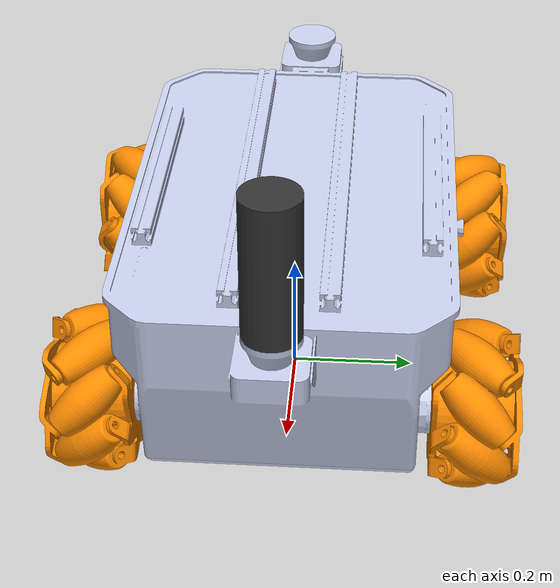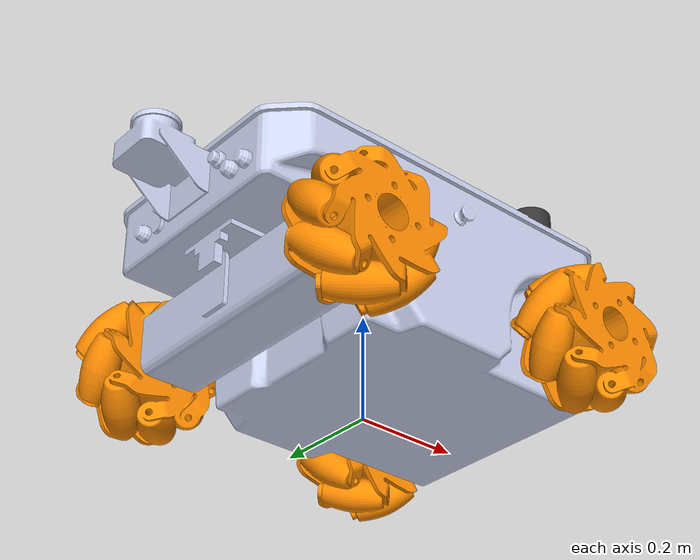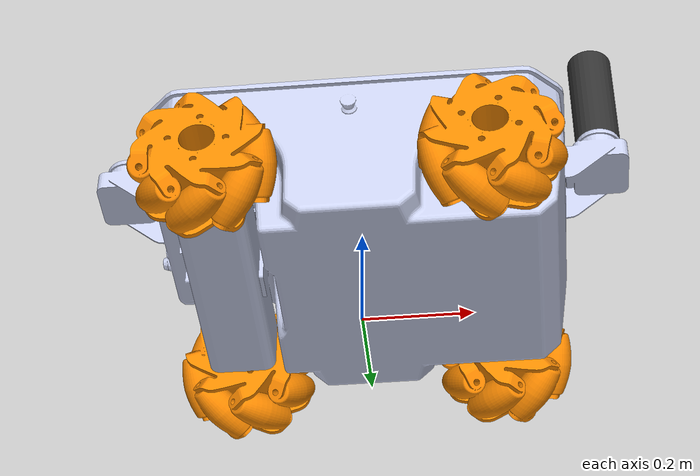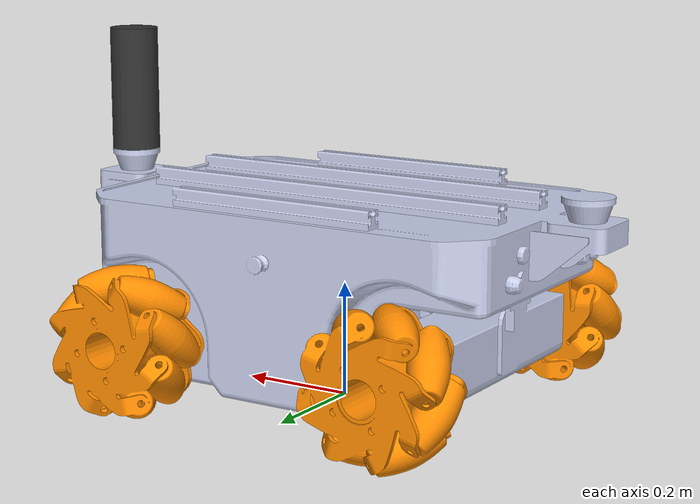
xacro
<?xml version="1.0" encoding="utf-8"?>
<robot name="neobotix_mpo_500" xmlns:xacro="http://www.ros.org/wiki/xacro">

  <link name="base_footprint"/>
  <joint name="base_footprint_joint" type="fixed">
    <parent link="base_footprint"/>
    <child link="base_link"/>
    <!-- Wheel Z offset is -0.0695, radius is ~0.125. 0.125 + 0.0695 = 0.1945 -->
    <origin xyz="0 0 0.1945" rpy="0 0 0"/>
  </joint>

  <link name="base_link">
    <inertial>
      <origin xyz="0.0256676534522073 -1.75256135478974E-05 0.0197583725255792" rpy="0 0 0" />
      <mass value="99.9941250990312" />
      <inertia ixx="2.59830231125293" ixy="-0.000782873053846597" ixz="0.321647608268646" iyy="4.1760312438908" iyz="0.000104490647560942" izz="5.24462822654489" />
    </inertial>
    <visual>
      <origin xyz="0 0 0" rpy="0 0 0" />
      <geometry>
        <mesh filename="package://neobotix_mpo_500/meshes/base_link.STL" />
      </geometry>
      <material name="grey"><color rgba="0.792 0.820 0.933 1" /></material>
    </visual>
    <collision>
      <origin xyz="0 0 0" rpy="0 0 0" />
      <geometry>
        <mesh filename="package://neobotix_mpo_500/meshes/base_link.STL" />
      </geometry>
    </collision>
  </link>

  <link name="lidar">
    <inertial>
      <origin xyz="0 0 2.22044604925031E-16" rpy="0 0 0" />
      <mass value="1.27793705962725" />
      <inertia ixx="0.00574507254630929" ixy="-2.75849340992963E-35" ixz="-1.98770398289009E-19" iyy="0.00574507254630929" iyz="-9.02879550923129E-36" izz="0.0011814528116254" />
    </inertial>
    <visual>
      <origin xyz="0 0 0" rpy="0 0 0" />
      <geometry>
        <mesh filename="package://neobotix_mpo_500/meshes/lidar.STL" />
      </geometry>
      <material name="dark_grey"><color rgba="0.2 0.2 0.2 1" /></material>
    </visual>
    <collision>
      <origin xyz="0 0 0" rpy="0 0 0" />
      <geometry>
        <mesh filename="package://neobotix_mpo_500/meshes/lidar.STL" />
      </geometry>
    </collision>
  </link>
  <joint name="lidar_1" type="fixed">
    <origin xyz="0.453999999999999 0 0.3142" rpy="0 0 0" />
    <parent link="base_link" />
    <child link="lidar" />
  </joint>

  <link name="front_left">
    <inertial>
      <origin xyz="6.13567202600862E-08 0.00039207571315969 -9.57781993715656E-08" rpy="0 0 0" />
      <mass value="4.25709704918953" />
      <inertia ixx="0.00728188988239518" ixy="1.62573097341839E-09" ixz="3.08263229981666E-08" iyy="0.00895762169032392" iyz="1.04146143361687E-09" izz="0.00728186151011583" />
    </inertial>
    <visual>
      <origin xyz="0 0 0" rpy="0 0 0" />
      <geometry>
        <mesh filename="package://neobotix_mpo_500/meshes/front_left.STL" />
      </geometry>
      <material name="orange"><color rgba="1.0 0.55 0.0 1" /></material>
    </visual>
    <collision>
      <origin xyz="0 0 0" rpy="0 0 0" />
      <geometry>
        <mesh filename="package://neobotix_mpo_500/meshes/front_left.STL" />
      </geometry>
    </collision>
  </link>
  <joint name="wheel_1" type="continuous">
    <origin xyz="0.25 0.29265 -0.0695000000000006" rpy="0 0 0" />
    <parent link="base_link" />
    <child link="front_left" />
    <axis xyz="0 1 0" />
  </joint>

  <link name="rear_left">
    <inertial>
      <origin xyz="5.74112119682141E-05 0.00110281085116448 -9.22361132402738E-05" rpy="0 0 0" />
      <mass value="4.25709704891045" />
      <inertia ixx="0.0072818071794464" ixy="-1.18603733545073E-10" ixz="1.77025317471887E-08" iyy="0.00895762172137745" iyz="-9.33767910947096E-10" izz="0.00728194430945289" />
    </inertial>
    <visual>
      <origin xyz="0 0 0" rpy="0 0 0" />
      <geometry>
        <mesh filename="package://neobotix_mpo_500/meshes/rear_left.STL" />
      </geometry>
      <material name="orange"><color rgba="1.0 0.55 0.0 1" /></material>
    </visual>
    <collision>
      <origin xyz="0 0 0" rpy="0 0 0" />
      <geometry>
        <mesh filename="package://neobotix_mpo_500/meshes/rear_left.STL" />
      </geometry>
    </collision>
  </link>
  <joint name="wheel_2" type="continuous">
    <origin xyz="-0.25 0.29265 -0.0694999999999997" rpy="0 0 0" />
    <parent link="base_link" />
    <child link="rear_left" />
    <axis xyz="0 1 0" />
  </joint>

  <link name="front_right">
    <inertial>
      <origin xyz="-0.000108540712441152 0.00110281052866531 4.73936175082734E-06" rpy="0 0 0" />
      <mass value="4.25709704890638" />
      <inertia ixx="0.00728188403445877" ixy="-7.03465733830758E-10" ixz="-7.03263740529191E-08" iyy="0.0089576217204286" iyz="6.25407153103861E-10" izz="0.00728186745323767" />
    </inertial>
    <visual>
      <origin xyz="0 0 0" rpy="0 0 0" />
      <geometry>
        <mesh filename="package://neobotix_mpo_500/meshes/front_right.STL" />
      </geometry>
      <material name="orange"><color rgba="1.0 0.55 0.0 1" /></material>
    </visual>
    <collision>
      <origin xyz="0 0 0" rpy="0 0 0" />
      <geometry>
        <mesh filename="package://neobotix_mpo_500/meshes/front_right.STL" />
      </geometry>
    </collision>
  </link>
  <joint name="wheel_3" type="continuous">
    <origin xyz="0.25 -0.29265 -0.0694999999999999" rpy="0 0 0" />
    <parent link="base_link" />
    <child link="front_right" />
    <axis xyz="0 1 0" />
  </joint>

  <link name="rear_right">
    <inertial>
      <origin xyz="8.51609689572763E-08 -0.000392077722549759 7.54036992844931E-08" rpy="0 0 0" />
      <mass value="4.2570970491888" />
      <inertia ixx="0.00728187159485602" ixy="-1.27989617539825E-09" ixz="-3.36841939733111E-08" iyy="0.00895762169124088" iyz="1.44551565424546E-09" izz="0.00728187981291911" />
    </inertial>
    <visual>
      <origin xyz="0 0 0" rpy="0 0 0" />
      <geometry>
        <mesh filename="package://neobotix_mpo_500/meshes/rear_right.STL" />
      </geometry>
      <material name="orange"><color rgba="1.0 0.55 0.0 1" /></material>
    </visual>
    <collision>
      <origin xyz="0 0 0" rpy="0 0 0" />
      <geometry>
        <mesh filename="package://neobotix_mpo_500/meshes/rear_right.STL" />
      </geometry>
    </collision>
  </link>
  <joint name="wheel_4" type="continuous">
    <origin xyz="-0.25 -0.29265 -0.0695000000000006" rpy="0 0 0" />
    <parent link="base_link" />
    <child link="rear_right" />
    <axis xyz="0 1 0" />
  </joint>

  <!-- ================= GAZEBO FORTRESS PLUGINS ================= -->
  <xacro:macro name="wheel_friction" params="link">
    <gazebo reference="${link}">
      <mu1>0.0</mu1>
      <mu2>0.0</mu2>
      <kp>1000000.0</kp>
      <kd>100.0</kd>
      <maxVel>1.0</maxVel>
      <minDepth>0.001</minDepth>
    </gazebo>
  </xacro:macro>
  <xacro:wheel_friction link="front_left"/>
  <xacro:wheel_friction link="rear_left"/>
  <xacro:wheel_friction link="front_right"/>
  <xacro:wheel_friction link="rear_right"/>

  <xacro:macro name="wheel_joint_controller" params="joint_name">
    <gazebo>
      <plugin filename="ignition-gazebo-joint-controller-system" name="ignition::gazebo::systems::JointController">
        <joint_name>${joint_name}</joint_name>
        <topic>/neobotix_mpo_500/${joint_name}/cmd_vel</topic>
        <initial_velocity>0.0</initial_velocity>
        <p_gain>10.0</p_gain>
        <i_gain>0.1</i_gain>
        <d_gain>0.0</d_gain>
        <i_max>1.0</i_max>
        <i_min>-1.0</i_min>
        <cmd_max>50.0</cmd_max>
        <cmd_min>-50.0</cmd_min>
      </plugin>
    </gazebo>
  </xacro:macro>
  <xacro:wheel_joint_controller joint_name="wheel_1"/>
  <xacro:wheel_joint_controller joint_name="wheel_2"/>
  <xacro:wheel_joint_controller joint_name="wheel_3"/>
  <xacro:wheel_joint_controller joint_name="wheel_4"/>

  <gazebo>
    <plugin filename="ignition-gazebo-velocity-control-system" name="ignition::gazebo::systems::VelocityControl">
      <topic>/neobotix_mpo_500/cmd_vel_gz</topic>
      <odom_frame_id>odom</odom_frame_id>
      <robot_base_frame>base_footprint</robot_base_frame>
    </plugin>
  </gazebo>

  <gazebo>
    <plugin filename="ignition-gazebo-joint-state-publisher-system" name="ignition::gazebo::systems::JointStatePublisher">
      <topic>/neobotix_mpo_500/joint_states</topic>
    </plugin>
  </gazebo>

  <gazebo reference="lidar">
    <sensor name="lidar_sensor" type="gpu_lidar">
      <pose>0 0 0 0 0 0</pose>
      <topic>/lidar/scan</topic>
      <gz_frame_id>lidar</gz_frame_id>
      <update_rate>10</update_rate>
      <always_on>true</always_on>
      <visualize>true</visualize>
      <lidar>
        <scan>
          <horizontal>
            <samples>360</samples>
            <resolution>1</resolution>
            <min_angle>-3.14159265</min_angle>
            <max_angle>3.14159265</max_angle>
          </horizontal>
        </scan>
        <range>
          <min>0.05</min>
          <max>12.0</max>
          <resolution>0.01</resolution>
        </range>
      </lidar>
    </sensor>
  </gazebo>

  <gazebo reference="base_link">
    <sensor name="imu_sensor" type="imu">
      <pose>0 0 0 0 0 0</pose>
      <topic>/imu</topic>
      <update_rate>50</update_rate>
      <always_on>true</always_on>
    </sensor>
  </gazebo>

</robot>
